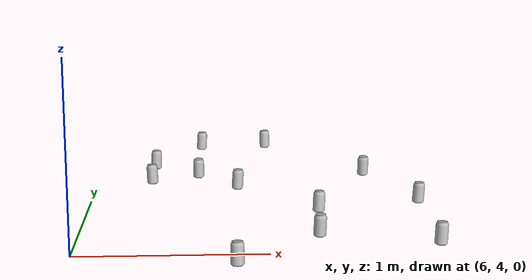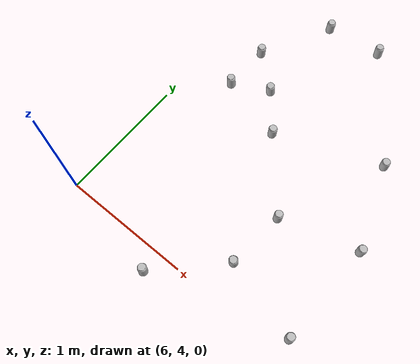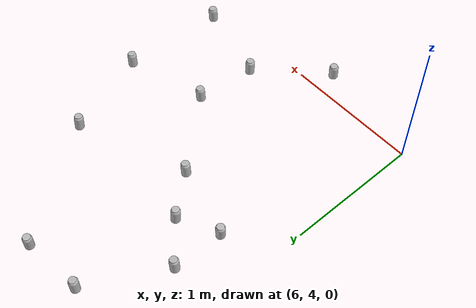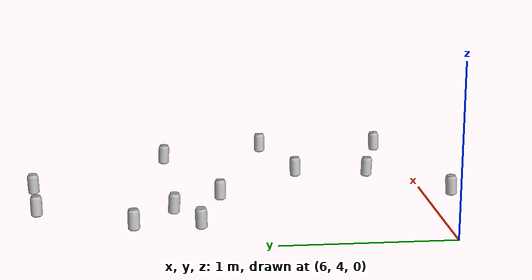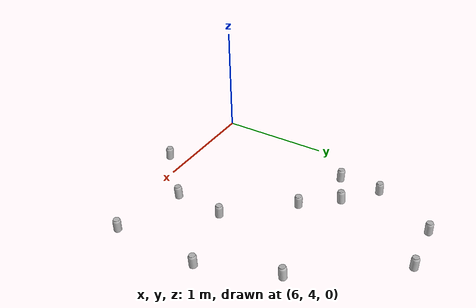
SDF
<sdf version="1.6">
 <world name="default">
  <model name="coke_can155">
   <link name="link">
    <inertial>
     <pose>0 0 0.06 0 -0 0</pose>
     <mass>0.39</mass>
     <inertia>
      <ixx>0.00055575</ixx>
      <ixy>0</ixy>
      <ixz>0</ixz>
      <iyy>0.00055575</iyy>
      <iyz>0</iyz>
      <izz>0.0001755</izz>
     </inertia>
    </inertial>
    <collision name="collision">
     <pose>0.003937 0.004724 -0.18 0 -0 0</pose>
     <geometry><mesh><uri>model://coke_can/meshes/coke_can.dae</uri></mesh></geometry>
     <surface>
      <friction><ode><mu>1</mu><mu2>1</mu2></ode></friction>
      <contact>
       <ode><kp>1e+07</kp><kd>1</kd><min_depth>0.001</min_depth><max_vel>0.1</max_vel></ode>
       <collide_bitmask>256</collide_bitmask>
      </contact>
     </surface>
    </collision>
    <visual name="visual">
     <pose>0.003937 0.004724 -0.18 0 -0 0</pose>
     <geometry><mesh><uri>model://coke_can/meshes/coke_can.dae</uri></mesh></geometry>
    </visual>
   </link>
   <pose>6.34147 5.39346 -0.002659 -0.055092 0.007755 1.06313</pose>
  </model>
  <model name="coke_can166">
   <link name="link">
    <inertial>
     <pose>0 0 0.06 0 -0 0</pose>
     <mass>0.39</mass>
     <inertia>
      <ixx>0.00055575</ixx>
      <ixy>0</ixy>
      <ixz>0</ixz>
      <iyy>0.00055575</iyy>
      <iyz>0</iyz>
      <izz>0.0001755</izz>
     </inertia>
    </inertial>
    <collision name="collision">
     <pose>0.003937 0.004724 -0.18 0 -0 0</pose>
     <geometry><mesh><uri>model://coke_can/meshes/coke_can.dae</uri></mesh></geometry>
     <surface>
      <friction><ode><mu>1</mu><mu2>1</mu2></ode></friction>
      <contact>
       <ode><kp>1e+07</kp><kd>1</kd><min_depth>0.001</min_depth><max_vel>0.1</max_vel></ode>
       <collide_bitmask>256</collide_bitmask>
      </contact>
     </surface>
    </collision>
    <visual name="visual">
     <pose>0.003937 0.004724 -0.18 0 -0 0</pose>
     <geometry><mesh><uri>model://coke_can/meshes/coke_can.dae</uri></mesh></geometry>
    </visual>
   </link>
   <pose>6.6267 5.53583 -0.002659 -0.055136 0.007726 -2.95568</pose>
  </model>
  <model name="coke_can205">
   <link name="link">
    <inertial>
     <pose>0 0 0.06 0 -0 0</pose>
     <mass>0.39</mass>
     <inertia>
      <ixx>0.00055575</ixx>
      <ixy>0</ixy>
      <ixz>0</ixz>
      <iyy>0.00055575</iyy>
      <iyz>0</iyz>
      <izz>0.0001755</izz>
     </inertia>
    </inertial>
    <collision name="collision">
     <pose>0.003937 0.004724 -0.18 0 -0 0</pose>
     <geometry><mesh><uri>model://coke_can/meshes/coke_can.dae</uri></mesh></geometry>
     <surface>
      <friction><ode><mu>1</mu><mu2>1</mu2></ode></friction>
      <contact>
       <ode><kp>1e+07</kp><kd>1</kd><min_depth>0.001</min_depth><max_vel>0.1</max_vel></ode>
       <collide_bitmask>256</collide_bitmask>
      </contact>
     </surface>
    </collision>
    <visual name="visual">
     <pose>0.003937 0.004724 -0.18 0 -0 0</pose>
     <geometry><mesh><uri>model://coke_can/meshes/coke_can.dae</uri></mesh></geometry>
    </visual>
   </link>
   <pose>6.64291 6.32717 -0.002659 -0.055101 0.007749 -0.867958</pose>
  </model>
  <model name="coke_can303">
   <link name="link">
    <inertial>
     <pose>0 0 0.06 0 -0 0</pose>
     <mass>0.39</mass>
     <inertia>
      <ixx>0.00055575</ixx>
      <ixy>0</ixy>
      <ixz>0</ixz>
      <iyy>0.00055575</iyy>
      <iyz>0</iyz>
      <izz>0.0001755</izz>
     </inertia>
    </inertial>
    <collision name="collision">
     <pose>0.003937 0.004724 -0.18 0 -0 0</pose>
     <geometry><mesh><uri>model://coke_can/meshes/coke_can.dae</uri></mesh></geometry>
     <surface>
      <friction><ode><mu>1</mu><mu2>1</mu2></ode></friction>
      <contact>
       <ode><kp>1e+07</kp><kd>1</kd><min_depth>0.001</min_depth><max_vel>0.1</max_vel></ode>
       <collide_bitmask>256</collide_bitmask>
      </contact>
     </surface>
    </collision>
    <visual name="visual">
     <pose>0.003937 0.004724 -0.18 0 -0 0</pose>
     <geometry><mesh><uri>model://coke_can/meshes/coke_can.dae</uri></mesh></geometry>
    </visual>
   </link>
   <pose>6.34499 5.77167 -0.002659 -0.055114 0.007742 -0.984542</pose>
  </model>
  <model name="coke_can326">
   <link name="link">
    <inertial>
     <pose>0 0 0.06 0 -0 0</pose>
     <mass>0.39</mass>
     <inertia>
      <ixx>0.00055575</ixx>
      <ixy>0</ixy>
      <ixz>0</ixz>
      <iyy>0.00055575</iyy>
      <iyz>0</iyz>
      <izz>0.0001755</izz>
     </inertia>
    </inertial>
    <collision name="collision">
     <pose>0.003937 0.004724 -0.18 0 -0 0</pose>
     <geometry><mesh><uri>model://coke_can/meshes/coke_can.dae</uri></mesh></geometry>
     <surface>
      <friction><ode><mu>1</mu><mu2>1</mu2></ode></friction>
      <contact>
       <ode><kp>1e+07</kp><kd>1</kd><min_depth>0.001</min_depth><max_vel>0.1</max_vel></ode>
       <collide_bitmask>256</collide_bitmask>
      </contact>
     </surface>
    </collision>
    <visual name="visual">
     <pose>0.003937 0.004724 -0.18 0 -0 0</pose>
     <geometry><mesh><uri>model://coke_can/meshes/coke_can.dae</uri></mesh></geometry>
    </visual>
   </link>
   <pose>6.82944 3.83578 -0.002659 -0.055137 0.007724 0.231126</pose>
  </model>
  <model name="coke_can354">
   <link name="link">
    <inertial>
     <pose>0 0 0.06 0 -0 0</pose>
     <mass>0.39</mass>
     <inertia>
      <ixx>0.00055575</ixx>
      <ixy>0</ixy>
      <ixz>0</ixz>
      <iyy>0.00055575</iyy>
      <iyz>0</iyz>
      <izz>0.0001755</izz>
     </inertia>
    </inertial>
    <collision name="collision">
     <pose>0.003937 0.004724 -0.18 0 -0 0</pose>
     <geometry><mesh><uri>model://coke_can/meshes/coke_can.dae</uri></mesh></geometry>
     <surface>
      <friction><ode><mu>1</mu><mu2>1</mu2></ode></friction>
      <contact>
       <ode><kp>1e+07</kp><kd>1</kd><min_depth>0.001</min_depth><max_vel>0.1</max_vel></ode>
       <collide_bitmask>256</collide_bitmask>
      </contact>
     </surface>
    </collision>
    <visual name="visual">
     <pose>0.003937 0.004724 -0.18 0 -0 0</pose>
     <geometry><mesh><uri>model://coke_can/meshes/coke_can.dae</uri></mesh></geometry>
    </visual>
   </link>
   <pose>7.27485 4.2781 -0.002659 -0.055104 0.007747 -2.33675</pose>
  </model>
  <model name="coke_can356">
   <link name="link">
    <inertial>
     <pose>0 0 0.06 0 -0 0</pose>
     <mass>0.39</mass>
     <inertia>
      <ixx>0.00055575</ixx>
      <ixy>0</ixy>
      <ixz>0</ixz>
      <iyy>0.00055575</iyy>
      <iyz>0</iyz>
      <izz>0.0001755</izz>
     </inertia>
    </inertial>
    <collision name="collision">
     <pose>0.003937 0.004724 -0.18 0 -0 0</pose>
     <geometry><mesh><uri>model://coke_can/meshes/coke_can.dae</uri></mesh></geometry>
     <surface>
      <friction><ode><mu>1</mu><mu2>1</mu2></ode></friction>
      <contact>
       <ode><kp>1e+07</kp><kd>1</kd><min_depth>0.001</min_depth><max_vel>0.1</max_vel></ode>
       <collide_bitmask>256</collide_bitmask>
      </contact>
     </surface>
    </collision>
    <visual name="visual">
     <pose>0.003937 0.004724 -0.18 0 -0 0</pose>
     <geometry><mesh><uri>model://coke_can/meshes/coke_can.dae</uri></mesh></geometry>
    </visual>
   </link>
   <pose>7.91785 4.89414 -0.002659 -0.055127 0.00773 -1.42458</pose>
  </model>
  <model name="coke_can370">
   <link name="link">
    <inertial>
     <pose>0 0 0.06 0 -0 0</pose>
     <mass>0.39</mass>
     <inertia>
      <ixx>0.00055575</ixx>
      <ixy>0</ixy>
      <ixz>0</ixz>
      <iyy>0.00055575</iyy>
      <iyz>0</iyz>
      <izz>0.0001755</izz>
     </inertia>
    </inertial>
    <collision name="collision">
     <pose>0.003937 0.004724 -0.18 0 -0 0</pose>
     <geometry><mesh><uri>model://coke_can/meshes/coke_can.dae</uri></mesh></geometry>
     <surface>
      <friction><ode><mu>1</mu><mu2>1</mu2></ode></friction>
      <contact>
       <ode><kp>1e+07</kp><kd>1</kd><min_depth>0.001</min_depth><max_vel>0.1</max_vel></ode>
       <collide_bitmask>256</collide_bitmask>
      </contact>
     </surface>
    </collision>
    <visual name="visual">
     <pose>0.003937 0.004724 -0.18 0 -0 0</pose>
     <geometry><mesh><uri>model://coke_can/meshes/coke_can.dae</uri></mesh></geometry>
    </visual>
   </link>
   <pose>7.09403 6.36899 -0.002659 -0.055116 0.007738 0.660746</pose>
  </model>
  <model name="coke_can492">
   <link name="link">
    <inertial>
     <pose>0 0 0.06 0 -0 0</pose>
     <mass>0.39</mass>
     <inertia>
      <ixx>0.00055575</ixx>
      <ixy>0</ixy>
      <ixz>0</ixz>
      <iyy>0.00055575</iyy>
      <iyz>0</iyz>
      <izz>0.0001755</izz>
     </inertia>
    </inertial>
    <collision name="collision">
     <pose>0.003937 0.004724 -0.18 0 -0 0</pose>
     <geometry><mesh><uri>model://coke_can/meshes/coke_can.dae</uri></mesh></geometry>
     <surface>
      <friction><ode><mu>1</mu><mu2>1</mu2></ode></friction>
      <contact>
       <ode><kp>1e+07</kp><kd>1</kd><min_depth>0.001</min_depth><max_vel>0.1</max_vel></ode>
       <collide_bitmask>256</collide_bitmask>
      </contact>
     </surface>
    </collision>
    <visual name="visual">
     <pose>0.003937 0.004724 -0.18 0 -0 0</pose>
     <geometry><mesh><uri>model://coke_can/meshes/coke_can.dae</uri></mesh></geometry>
    </visual>
   </link>
   <pose>7.6853 5.55487 -0.002659 -0.055132 0.007729 -2.63452</pose>
  </model>
  <model name="coke_can540">
   <link name="link">
    <inertial>
     <pose>0 0 0.06 0 -0 0</pose>
     <mass>0.39</mass>
     <inertia>
      <ixx>0.00055575</ixx>
      <ixy>0</ixy>
      <ixz>0</ixz>
      <iyy>0.00055575</iyy>
      <iyz>0</iyz>
      <izz>0.0001755</izz>
     </inertia>
    </inertial>
    <collision name="collision">
     <pose>0.003937 0.004724 -0.18 0 -0 0</pose>
     <geometry><mesh><uri>model://coke_can/meshes/coke_can.dae</uri></mesh></geometry>
     <surface>
      <friction><ode><mu>1</mu><mu2>1</mu2></ode></friction>
      <contact>
       <ode><kp>1e+07</kp><kd>1</kd><min_depth>0.001</min_depth><max_vel>0.1</max_vel></ode>
       <collide_bitmask>256</collide_bitmask>
      </contact>
     </surface>
    </collision>
    <visual name="visual">
     <pose>0.003937 0.004724 -0.18 0 -0 0</pose>
     <geometry><mesh><uri>model://coke_can/meshes/coke_can.dae</uri></mesh></geometry>
    </visual>
   </link>
   <pose>7.88606 4.11061 -0.002659 -0.055085 0.007761 -0.595214</pose>
  </model>
  <model name="coke_can668">
   <link name="link">
    <inertial>
     <pose>0 0 0.06 0 -0 0</pose>
     <mass>0.39</mass>
     <inertia>
      <ixx>0.00055575</ixx>
      <ixy>0</ixy>
      <ixz>0</ixz>
      <iyy>0.00055575</iyy>
      <iyz>0</iyz>
      <izz>0.0001755</izz>
     </inertia>
    </inertial>
    <collision name="collision">
     <pose>0.003937 0.004724 -0.18 0 -0 0</pose>
     <geometry><mesh><uri>model://coke_can/meshes/coke_can.dae</uri></mesh></geometry>
     <surface>
      <friction><ode><mu>1</mu><mu2>1</mu2></ode></friction>
      <contact>
       <ode><kp>1e+07</kp><kd>1</kd><min_depth>0.001</min_depth><max_vel>0.1</max_vel></ode>
       <collide_bitmask>256</collide_bitmask>
      </contact>
     </surface>
    </collision>
    <visual name="visual">
     <pose>0.003937 0.004724 -0.18 0 -0 0</pose>
     <geometry><mesh><uri>model://coke_can/meshes/coke_can.dae</uri></mesh></geometry>
    </visual>
   </link>
   <pose>6.86677 5.24402 -0.002659 -0.055129 0.007729 -1.17639</pose>
  </model>
  <model name="coke_can872">
   <link name="link">
    <inertial>
     <pose>0 0 0.06 0 -0 0</pose>
     <mass>0.39</mass>
     <inertia>
      <ixx>0.00055575</ixx>
      <ixy>0</ixy>
      <ixz>0</ixz>
      <iyy>0.00055575</iyy>
      <iyz>0</iyz>
      <izz>0.0001755</izz>
     </inertia>
    </inertial>
    <collision name="collision">
     <pose>0.003937 0.004724 -0.18 0 -0 0</pose>
     <geometry><mesh><uri>model://coke_can/meshes/coke_can.dae</uri></mesh></geometry>
     <surface>
      <friction><ode><mu>1</mu><mu2>1</mu2></ode></friction>
      <contact>
       <ode><kp>1e+07</kp><kd>1</kd><min_depth>0.001</min_depth><max_vel>0.1</max_vel></ode>
       <collide_bitmask>256</collide_bitmask>
      </contact>
     </surface>
    </collision>
    <visual name="visual">
     <pose>0.003937 0.004724 -0.18 0 -0 0</pose>
     <geometry><mesh><uri>model://coke_can/meshes/coke_can.dae</uri></mesh></geometry>
    </visual>
   </link>
   <pose>7.31607 4.72801 -0.002659 -0.055087 0.007758 -0.664452</pose>
  </model>
 </world>
</sdf>
